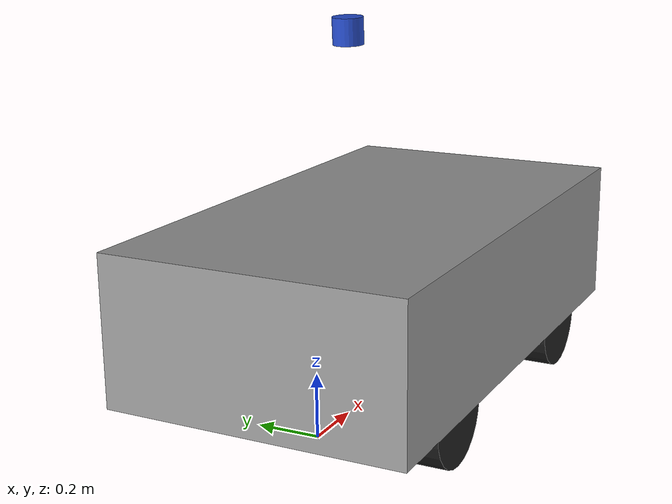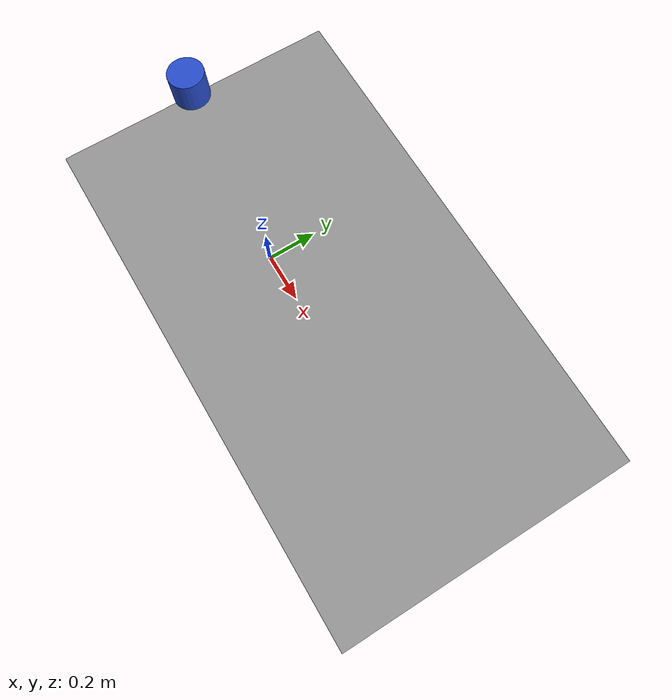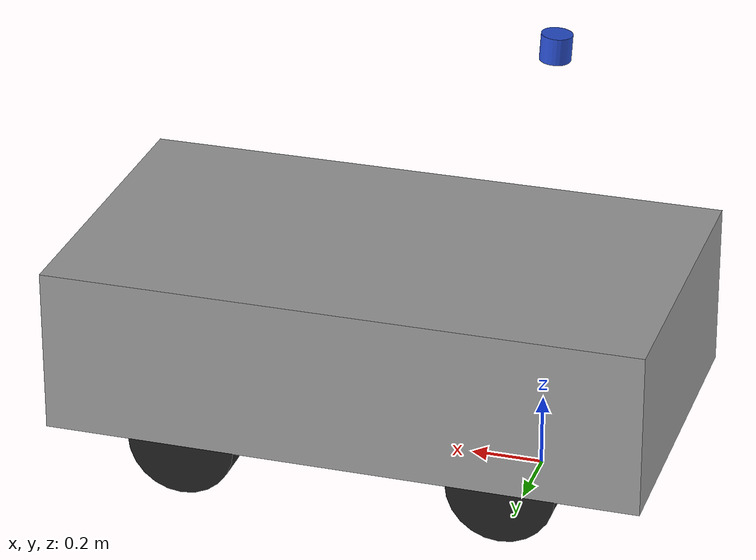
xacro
<?xml version="1.0"?>
<robot name="vehicle_1811" xmlns:xacro="http://www.ros.org/wiki/xacro">

  <xacro:include filename="$(find vehicle_1811_description)/urdf/materials.xacro"/>
  <xacro:include filename="$(find vehicle_1811_description)/urdf/vehicle_1811.macros.xacro"/>

  <xacro:property name="chassis_len"    value="1.660"/>  <!-- measured overall body length, bumper to bumper -->
  <xacro:property name="chassis_width"  value="0.930"/>  <!-- measured overall body width at the widest point -->
  <xacro:property name="chassis_height" value="0.460"/>  <!-- measured body box height (just for the drawing) -->

  <xacro:property name="wheel_base"   value="0.895"/> <!-- measured  front axle centre to rear axle centre, along x -->
  <xacro:property name="track_width"  value="0.800"/>  <!-- measured  left tyre centre to right tyre centre, along y -->
  <xacro:property name="wheel_radius" value="0.151"/>  <!-- measured tyre outer radius, ground to hub -->
  <xacro:property name="wheel_width"  value="0.100"/> <!-- measured  tyre width (visual) -->

  <xacro:property name="lidar_z"     value="1.160"/>

  <link name="base_footprint"/>
  <link name="base_link">
    <visual>
      <!-- Chassis box, drawn centred over the wheelbase and lifted to roughly
           axle height. Pure decoration so the model reads as a vehicle. -->
      <origin xyz="${wheel_base/2} 0 ${wheel_radius + chassis_height/2}" rpy="0 0 0"/>
      <geometry><box size="${chassis_len} ${chassis_width} ${chassis_height}"/></geometry>
      <material name="chassis_grey"/>
    </visual>
  </link>
  <joint name="base_footprint_joint" type="fixed">
    <parent link="base_footprint"/>
    <child link="base_link"/>
    <origin xyz="0 0 0" rpy="0 0 0"/>
  </joint>

  <xacro:wheel name="wheel_rear_left"   parent="base_link" x="0"             y="${ track_width/2}" z="${wheel_radius}" radius="${wheel_radius}" width="${wheel_width}"/>
  <xacro:wheel name="wheel_rear_right"  parent="base_link" x="0"             y="${-track_width/2}" z="${wheel_radius}" radius="${wheel_radius}" width="${wheel_width}"/>
  <xacro:wheel name="wheel_front_left"  parent="base_link" x="${wheel_base}" y="${ track_width/2}" z="${wheel_radius}" radius="${wheel_radius}" width="${wheel_width}"/>
  <xacro:wheel name="wheel_front_right" parent="base_link" x="${wheel_base}" y="${-track_width/2}" z="${wheel_radius}" radius="${wheel_radius}" width="${wheel_width}"/>

  <xacro:property name="lidar_x" value="0.015"/>  <!-- measured lidar fwd of rear axle, along x -->
  <xacro:property name="lidar_y" value="-0.105"/>  <!-- measured lidar lateral offset, +y=left, 0=centreline -->
  <xacro:ouster_os1 parent="base_link"
                    x="${lidar_x}" y="${lidar_y}" z="${lidar_z}"
                    roll="0" pitch="-0.0600" yaw="0"/>   <!-- measured mounting roll/pitch/yaw in radians -->

  <xacro:zed_x_camera name="front" parent="base_link" x="0" y="0" z="0" roll="0" pitch="0" yaw="0"/>
  <xacro:zed_x_camera name="left"  parent="base_link" x="0" y="0" z="0" roll="0" pitch="0" yaw="0"/>
  <xacro:zed_x_camera name="rear"  parent="base_link" x="0" y="0" z="0" roll="0" pitch="0" yaw="0"/>
  <xacro:zed_x_camera name="right" parent="base_link" x="0" y="0" z="0" roll="0" pitch="0" yaw="0"/>

</robot>

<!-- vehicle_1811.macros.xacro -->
<robot xmlns:xacro="http://www.ros.org/wiki/xacro">

  <xacro:macro name="wheel" params="name parent x y z radius width">
    <link name="${name}">
      <visual>
        <!-- rotate cylinder so its axis lies along Y -->
        <origin xyz="0 0 0" rpy="${pi/2} 0 0"/>
        <geometry><cylinder radius="${radius}" length="${width}"/></geometry>
        <material name="wheel_black"/>
      </visual>
    </link>
    <joint name="${name}_joint" type="continuous">
      <parent link="${parent}"/>
      <child link="${name}"/>
      <origin xyz="${x} ${y} ${z}" rpy="0 0 0"/>
      <axis xyz="0 1 0"/>
    </joint>
  </xacro:macro>

  <xacro:macro name="ouster_os1" params="parent x y z roll pitch yaw
                                         housing_d:=0.085 housing_h:=0.074">
    <link name="os_sensor">
      <visual>
        <origin xyz="0 0 ${housing_h/2}" rpy="0 0 0"/>
        <geometry><cylinder radius="${housing_d/2}" length="${housing_h}"/></geometry>
        <material name="lidar_blue"/>
      </visual>
    </link>
    <joint name="os_sensor_mount" type="fixed">
      <parent link="${parent}"/>
      <child link="os_sensor"/>
      <origin xyz="${x} ${y} ${z}" rpy="${roll} ${pitch} ${yaw}"/>
    </joint>
  </xacro:macro>

  <xacro:macro name="zed_x_camera" params="name parent x y z roll pitch yaw
                                           body_x:=0.038 body_y:=0.133 body_z:=0.031">
    <link name="zed_${name}_camera_link">
      <visual>
        <origin xyz="0 0 0" rpy="0 0 0"/>
        <geometry><box size="${body_x} ${body_y} ${body_z}"/></geometry>
        <material name="camera_green"/>
      </visual>
    </link>
    <joint name="zed_${name}_mount" type="floating">
      <parent link="${parent}"/>
      <child link="zed_${name}_camera_link"/>
      <origin xyz="${x} ${y} ${z}" rpy="${roll} ${pitch} ${yaw}"/>
    </joint>

    <!-- Optical frame: rotate body frame by (-90 about X, then -90 about Z)
         so +Z points out of the lens. Standard REP-103/145 convention. -->
    <link name="zed_${name}_optical_frame"/>
    <joint name="zed_${name}_optical_joint" type="fixed">
      <parent link="zed_${name}_camera_link"/>
      <child link="zed_${name}_optical_frame"/>
      <origin xyz="0 0 0" rpy="${-pi/2} 0 ${-pi/2}"/>
    </joint>
  </xacro:macro>

</robot>
